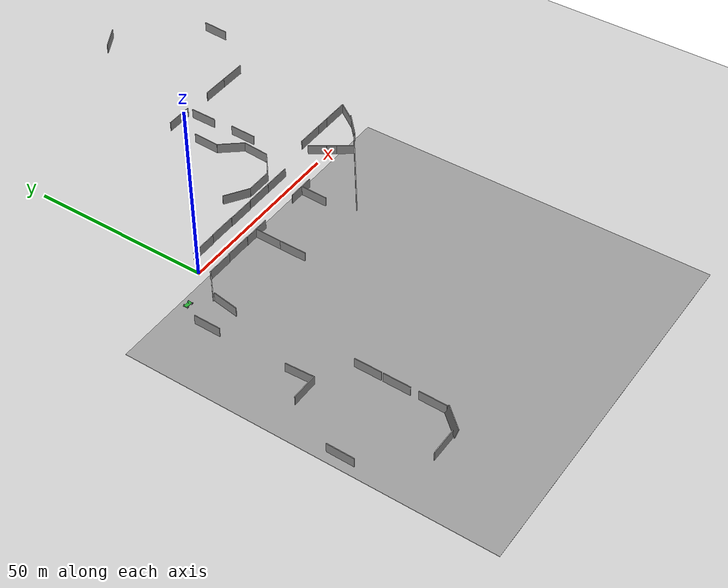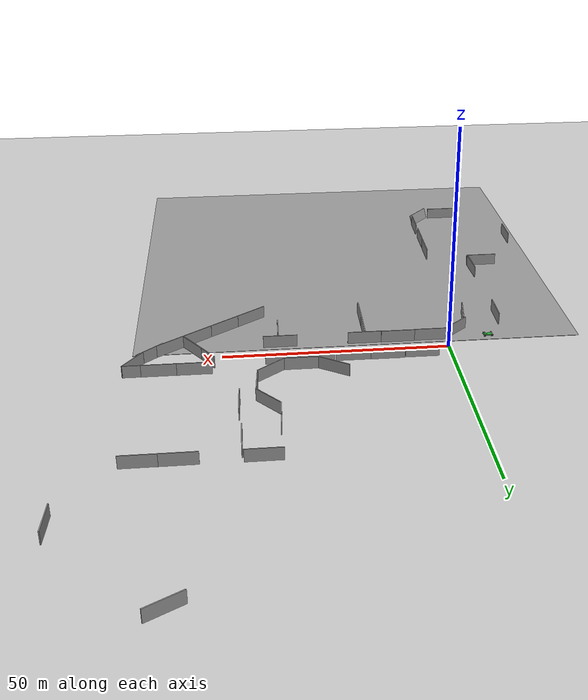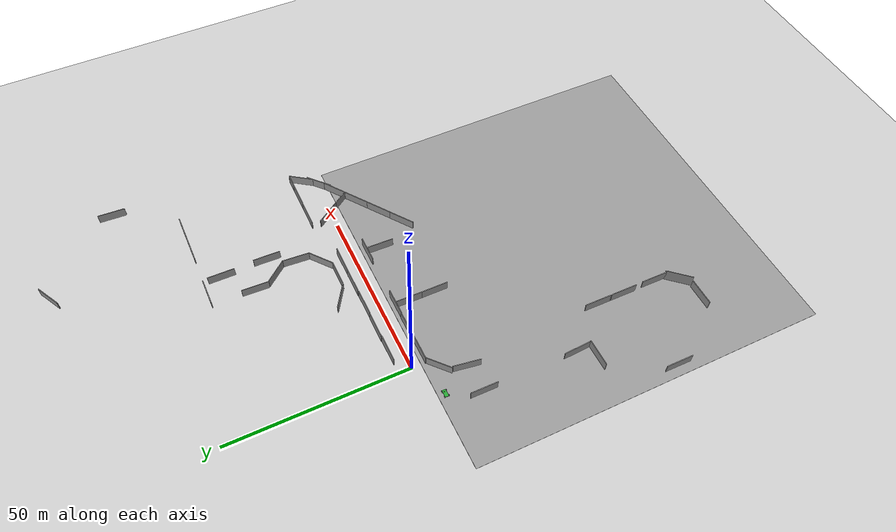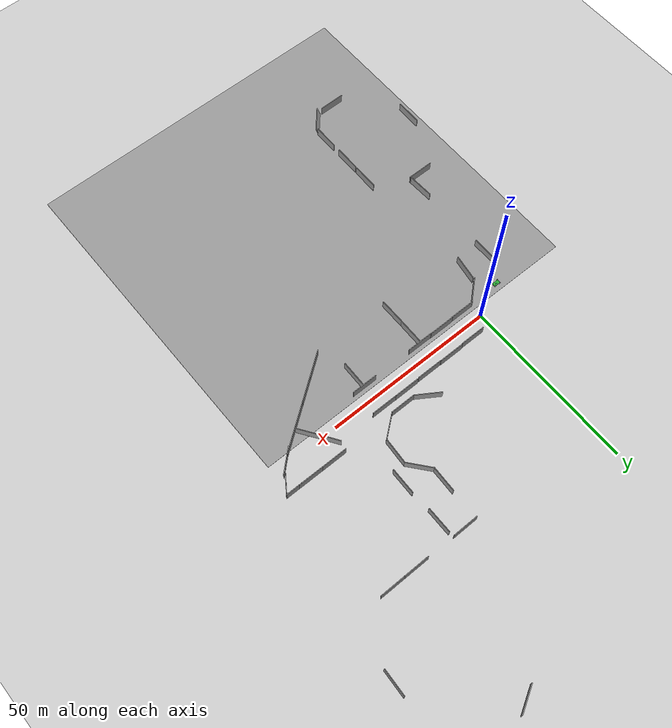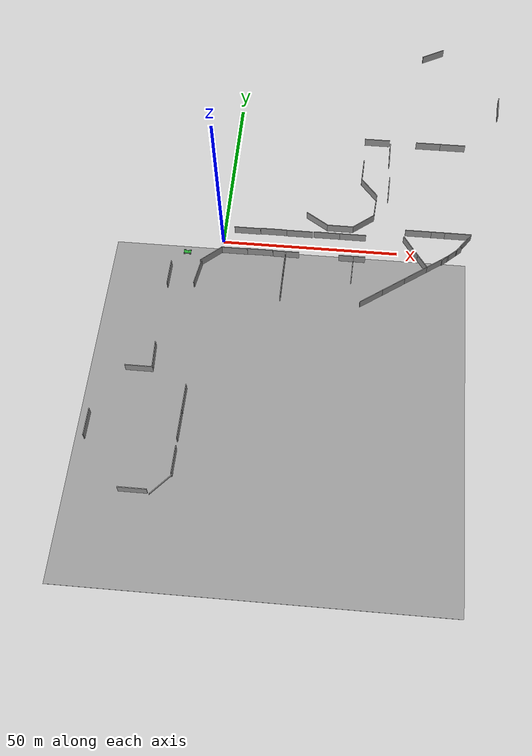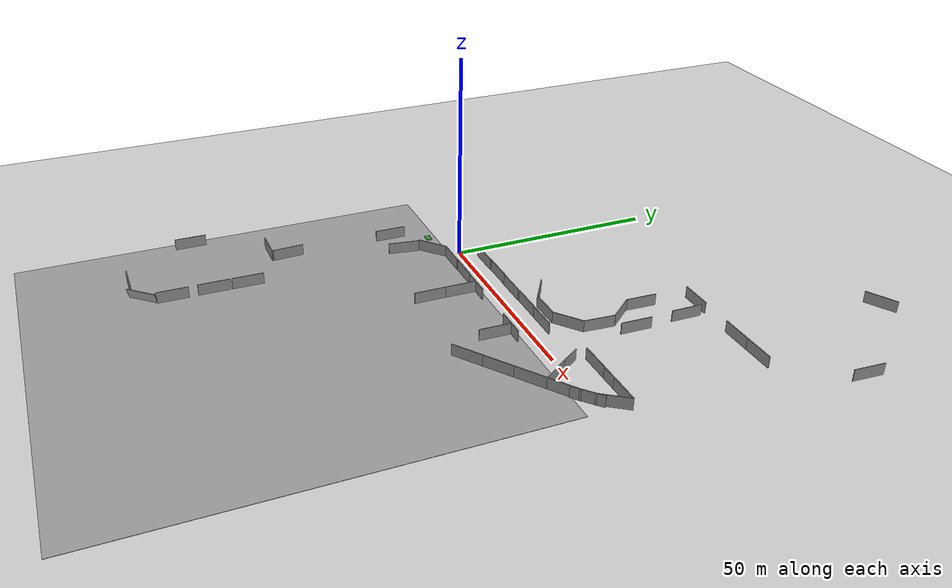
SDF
<sdf version="1.6">
 <world name="default">
  <scene>
   <grid>0</grid>
   <shadows>0</shadows>
   <ambient>0 0 0 1</ambient>
   <background>0.7 0.7 0.7 1</background>
  </scene>
  <light name="sun" type="directional">
   <pose>0 0 10 0 -0 0</pose>
   <diffuse>0.8 0.8 0.8 1</diffuse>
   <specular>0.2 0.2 0.2 1</specular>
   <attenuation>
    <range>1000</range>
    <constant>0.9</constant>
    <linear>0.01</linear>
    <quadratic>0.001</quadratic>
   </attenuation>
   <direction>-0.5 0.1 -0.9</direction>
  </light>
  <model name="ground">
   <link name="body">
    <collision name="geom">
     <geometry><plane><normal>0 0 1</normal><size>1 1</size></plane></geometry>
     <surface><friction><ode><mu>100</mu><mu2>50</mu2></ode></friction></surface>
    </collision>
   </link>
   <static>1</static>
  </model>
  <gravity>0 0 -9.8</gravity>
  <magnetic_field>6e-06 2.3e-05 -4.2e-05</magnetic_field>
  <atmosphere type="adiabatic"/>
  <physics name="default_physics" default="0" type="ode">
   <max_step_size>0.001</max_step_size>
   <real_time_factor>1</real_time_factor>
   <real_time_update_rate>1000</real_time_update_rate>
  </physics>
  <spherical_coordinates>
   <surface_model>EARTH_WGS84</surface_model>
   <latitude_deg>0</latitude_deg>
   <longitude_deg>0</longitude_deg>
   <elevation>0</elevation>
   <heading_deg>0</heading_deg>
  </spherical_coordinates>
  <model name="grey_wall">
   <static>1</static>
   <link name="link">
    <pose>0 0 1.4 0 -0 0</pose>
    <collision name="collision"><geometry><box><size>7.5 0.2 2.8</size></box></geometry></collision>
    <visual name="visual">
     <cast_shadows>0</cast_shadows>
     <geometry><box><size>7.5 0.2 2.8</size></box></geometry>
     <material>
      <script>
       <uri>model://grey_wall/materials/scripts</uri>
       <uri>model://grey_wall/materials/textures</uri>
       <name>vrc/grey_wall</name>
      </script>
     </material>
    </visual>
   </link>
   <pose>39.8349 8.85771 0 0 -0 0.675637</pose>
  </model>
  <model name="grey_wall_0">
   <static>1</static>
   <link name="link">
    <pose>0 0 1.4 0 -0 0</pose>
    <collision name="collision"><geometry><box><size>7.5 0.2 2.8</size></box></geometry></collision>
    <visual name="visual">
     <cast_shadows>0</cast_shadows>
     <geometry><box><size>7.5 0.2 2.8</size></box></geometry>
     <material>
      <script>
       <uri>model://grey_wall/materials/scripts</uri>
       <uri>model://grey_wall/materials/textures</uri>
       <name>vrc/grey_wall</name>
      </script>
     </material>
    </visual>
   </link>
   <pose>33.2301 6.52872 0 0 -0 0</pose>
  </model>
  <model name="grey_wall_1">
   <static>1</static>
   <link name="link">
    <pose>0 0 1.4 0 -0 0</pose>
    <collision name="collision"><geometry><box><size>7.5 0.2 2.8</size></box></geometry></collision>
    <visual name="visual">
     <cast_shadows>0</cast_shadows>
     <geometry><box><size>7.5 0.2 2.8</size></box></geometry>
     <material>
      <script>
       <uri>model://grey_wall/materials/scripts</uri>
       <uri>model://grey_wall/materials/textures</uri>
       <name>vrc/grey_wall</name>
      </script>
     </material>
    </visual>
   </link>
   <pose>42.9557 14.8753 0 0 0 -1.63944</pose>
  </model>
  <model name="grey_wall_2">
   <static>1</static>
   <link name="link">
    <pose>0 0 1.4 0 -0 0</pose>
    <collision name="collision"><geometry><box><size>7.5 0.2 2.8</size></box></geometry></collision>
    <visual name="visual">
     <cast_shadows>0</cast_shadows>
     <geometry><box><size>7.5 0.2 2.8</size></box></geometry>
     <material>
      <script>
       <uri>model://grey_wall/materials/scripts</uri>
       <uri>model://grey_wall/materials/textures</uri>
       <name>vrc/grey_wall</name>
      </script>
     </material>
    </visual>
   </link>
   <pose>18.4147 -3.73675 0 0 -0 0</pose>
  </model>
  <model name="grey_wall_3">
   <static>1</static>
   <link name="link">
    <pose>0 0 1.4 0 -0 0</pose>
    <collision name="collision"><geometry><box><size>7.5 0.2 2.8</size></box></geometry></collision>
    <visual name="visual">
     <cast_shadows>0</cast_shadows>
     <geometry><box><size>7.5 0.2 2.8</size></box></geometry>
     <material>
      <script>
       <uri>model://grey_wall/materials/scripts</uri>
       <uri>model://grey_wall/materials/textures</uri>
       <name>vrc/grey_wall</name>
      </script>
     </material>
    </visual>
   </link>
   <pose>37.216 -3.75414 0 0 -0 0</pose>
  </model>
  <model name="grey_wall_4">
   <static>1</static>
   <link name="link">
    <pose>0 0 1.4 0 -0 0</pose>
    <collision name="collision"><geometry><box><size>7.5 0.2 2.8</size></box></geometry></collision>
    <visual name="visual">
     <cast_shadows>0</cast_shadows>
     <geometry><box><size>7.5 0.2 2.8</size></box></geometry>
     <material>
      <script>
       <uri>model://grey_wall/materials/scripts</uri>
       <uri>model://grey_wall/materials/textures</uri>
       <name>vrc/grey_wall</name>
      </script>
     </material>
    </visual>
   </link>
   <pose>18.2308 -7.52074 0 0 0 -1.58731</pose>
  </model>
  <model name="grey_wall_5">
   <static>1</static>
   <link name="link">
    <pose>0 0 1.4 0 -0 0</pose>
    <collision name="collision"><geometry><box><size>7.5 0.2 2.8</size></box></geometry></collision>
    <visual name="visual">
     <cast_shadows>0</cast_shadows>
     <geometry><box><size>7.5 0.2 2.8</size></box></geometry>
     <material>
      <script>
       <uri>model://grey_wall/materials/scripts</uri>
       <uri>model://grey_wall/materials/textures</uri>
       <name>vrc/grey_wall</name>
      </script>
     </material>
    </visual>
   </link>
   <pose>18.1488 -14.9714 0 0 0 -1.57526</pose>
  </model>
  <model name="grey_wall_6">
   <static>1</static>
   <link name="link">
    <pose>0 0 1.4 0 -0 0</pose>
    <collision name="collision"><geometry><box><size>7.5 0.2 2.8</size></box></geometry></collision>
    <visual name="visual">
     <cast_shadows>0</cast_shadows>
     <geometry><box><size>7.5 0.2 2.8</size></box></geometry>
     <material>
      <script>
       <uri>model://grey_wall/materials/scripts</uri>
       <uri>model://grey_wall/materials/textures</uri>
       <name>vrc/grey_wall</name>
      </script>
     </material>
    </visual>
   </link>
   <pose>14.1798 3.77714 0 0 -0 0</pose>
  </model>
  <model name="grey_wall_7">
   <static>1</static>
   <link name="link">
    <pose>0 0 1.4 0 -0 0</pose>
    <collision name="collision"><geometry><box><size>7.5 0.2 2.8</size></box></geometry></collision>
    <visual name="visual">
     <cast_shadows>0</cast_shadows>
     <geometry><box><size>7.5 0.2 2.8</size></box></geometry>
     <material>
      <script>
       <uri>model://grey_wall/materials/scripts</uri>
       <uri>model://grey_wall/materials/textures</uri>
       <name>vrc/grey_wall</name>
      </script>
     </material>
    </visual>
   </link>
   <pose>21.7323 3.7046 0 0 -0 0</pose>
  </model>
  <model name="grey_wall_8">
   <static>1</static>
   <link name="link">
    <pose>0 0 1.4 0 -0 0</pose>
    <collision name="collision"><geometry><box><size>7.5 0.2 2.8</size></box></geometry></collision>
    <visual name="visual">
     <cast_shadows>0</cast_shadows>
     <geometry><box><size>7.5 0.2 2.8</size></box></geometry>
     <material>
      <script>
       <uri>model://grey_wall/materials/scripts</uri>
       <uri>model://grey_wall/materials/textures</uri>
       <name>vrc/grey_wall</name>
      </script>
     </material>
    </visual>
   </link>
   <pose>29.5412 3.80192 0 0 -0 0</pose>
  </model>
  <model name="grey_wall_9">
   <static>1</static>
   <link name="link">
    <pose>0 0 1.4 0 -0 0</pose>
    <collision name="collision"><geometry><box><size>7.5 0.2 2.8</size></box></geometry></collision>
    <visual name="visual">
     <cast_shadows>0</cast_shadows>
     <geometry><box><size>7.5 0.2 2.8</size></box></geometry>
     <material>
      <script>
       <uri>model://grey_wall/materials/scripts</uri>
       <uri>model://grey_wall/materials/textures</uri>
       <name>vrc/grey_wall</name>
      </script>
     </material>
    </visual>
   </link>
   <pose>37.0644 3.78366 0 0 -0 0</pose>
  </model>
  <model name="grey_wall_10">
   <static>1</static>
   <link name="link">
    <pose>0 0 1.4 0 -0 0</pose>
    <collision name="collision"><geometry><box><size>7.5 0.2 2.8</size></box></geometry></collision>
    <visual name="visual">
     <cast_shadows>0</cast_shadows>
     <geometry><box><size>7.5 0.2 2.8</size></box></geometry>
     <material>
      <script>
       <uri>model://grey_wall/materials/scripts</uri>
       <uri>model://grey_wall/materials/textures</uri>
       <name>vrc/grey_wall</name>
      </script>
     </material>
    </visual>
   </link>
   <pose>37.5201 -7.61042 0 0 0 -1.59517</pose>
  </model>
  <model name="grey_wall_11">
   <static>1</static>
   <link name="link">
    <pose>0 0 1.4 0 -0 0</pose>
    <collision name="collision"><geometry><box><size>7.5 0.2 2.8</size></box></geometry></collision>
    <visual name="visual">
     <cast_shadows>0</cast_shadows>
     <geometry><box><size>7.5 0.2 2.8</size></box></geometry>
     <material>
      <script>
       <uri>model://grey_wall/materials/scripts</uri>
       <uri>model://grey_wall/materials/textures</uri>
       <name>vrc/grey_wall</name>
      </script>
     </material>
    </visual>
   </link>
   <pose>46.6897 21.9332 0 0 -0 1.54578</pose>
  </model>
  <model name="grey_wall_12">
   <static>1</static>
   <link name="link">
    <pose>0 0 1.4 0 -0 0</pose>
    <collision name="collision"><geometry><box><size>7.5 0.2 2.8</size></box></geometry></collision>
    <visual name="visual">
     <cast_shadows>0</cast_shadows>
     <geometry><box><size>7.5 0.2 2.8</size></box></geometry>
     <material>
      <script>
       <uri>model://grey_wall/materials/scripts</uri>
       <uri>model://grey_wall/materials/textures</uri>
       <name>vrc/grey_wall</name>
      </script>
     </material>
    </visual>
   </link>
   <pose>6.59211 3.65025 0 0 -0 0</pose>
  </model>
  <model name="grey_wall_13">
   <static>1</static>
   <link name="link">
    <pose>0 0 1.4 0 -0 0</pose>
    <collision name="collision"><geometry><box><size>7.5 0.2 2.8</size></box></geometry></collision>
    <visual name="visual">
     <cast_shadows>0</cast_shadows>
     <geometry><box><size>7.5 0.2 2.8</size></box></geometry>
     <material>
      <script>
       <uri>model://grey_wall/materials/scripts</uri>
       <uri>model://grey_wall/materials/textures</uri>
       <name>vrc/grey_wall</name>
      </script>
     </material>
    </visual>
   </link>
   <pose>-2.7026 -6.1985 0 0 -0 0.728217</pose>
  </model>
  <model name="grey_wall_14">
   <static>1</static>
   <link name="link">
    <pose>0 0 1.4 0 -0 0</pose>
    <collision name="collision"><geometry><box><size>7.5 0.2 2.8</size></box></geometry></collision>
    <visual name="visual">
     <cast_shadows>0</cast_shadows>
     <geometry><box><size>7.5 0.2 2.8</size></box></geometry>
     <material>
      <script>
       <uri>model://grey_wall/materials/scripts</uri>
       <uri>model://grey_wall/materials/textures</uri>
       <name>vrc/grey_wall</name>
      </script>
     </material>
    </visual>
   </link>
   <pose>43.3452 -16.6324 0 0 -0 0.625661</pose>
  </model>
  <model name="grey_wall_14_clone">
   <static>1</static>
   <link name="link">
    <pose>0 0 1.4 0 -0 0</pose>
    <collision name="collision"><geometry><box><size>7.5 0.2 2.8</size></box></geometry></collision>
    <visual name="visual">
     <cast_shadows>0</cast_shadows>
     <geometry><box><size>7.5 0.2 2.8</size></box></geometry>
     <material>
      <script>
       <uri>model://grey_wall/materials/scripts</uri>
       <uri>model://grey_wall/materials/textures</uri>
       <name>vrc/grey_wall</name>
      </script>
     </material>
    </visual>
   </link>
   <pose>49.4103 -12.2666 0 0 -0 0.625661</pose>
  </model>
  <model name="grey_wall_14_clone_0">
   <static>1</static>
   <link name="link">
    <pose>0 0 1.4 0 -0 0</pose>
    <collision name="collision"><geometry><box><size>7.5 0.2 2.8</size></box></geometry></collision>
    <visual name="visual">
     <cast_shadows>0</cast_shadows>
     <geometry><box><size>7.5 0.2 2.8</size></box></geometry>
     <material>
      <script>
       <uri>model://grey_wall/materials/scripts</uri>
       <uri>model://grey_wall/materials/textures</uri>
       <name>vrc/grey_wall</name>
      </script>
     </material>
    </visual>
   </link>
   <pose>55.413 -7.93584 0 0 -0 0.625661</pose>
  </model>
  <model name="grey_wall_14_clone_1">
   <static>1</static>
   <link name="link">
    <pose>0 0 1.4 0 -0 0</pose>
    <collision name="collision"><geometry><box><size>7.5 0.2 2.8</size></box></geometry></collision>
    <visual name="visual">
     <cast_shadows>0</cast_shadows>
     <geometry><box><size>7.5 0.2 2.8</size></box></geometry>
     <material>
      <script>
       <uri>model://grey_wall/materials/scripts</uri>
       <uri>model://grey_wall/materials/textures</uri>
       <name>vrc/grey_wall</name>
      </script>
     </material>
    </visual>
   </link>
   <pose>56.4284 -2.68775 0 0 0 -0.964793</pose>
  </model>
  <model name="grey_wall_14_clone_2">
   <static>1</static>
   <link name="link">
    <pose>0 0 1.4 0 -0 0</pose>
    <collision name="collision"><geometry><box><size>7.5 0.2 2.8</size></box></geometry></collision>
    <visual name="visual">
     <cast_shadows>0</cast_shadows>
     <geometry><box><size>7.5 0.2 2.8</size></box></geometry>
     <material>
      <script>
       <uri>model://grey_wall/materials/scripts</uri>
       <uri>model://grey_wall/materials/textures</uri>
       <name>vrc/grey_wall</name>
      </script>
     </material>
    </visual>
   </link>
   <pose>53.7346 1.23619 0 0 0 -0.981934</pose>
  </model>
  <model name="grey_wall_15">
   <static>1</static>
   <link name="link">
    <pose>0 0 1.4 0 -0 0</pose>
    <collision name="collision"><geometry><box><size>7.5 0.2 2.8</size></box></geometry></collision>
    <visual name="visual">
     <cast_shadows>0</cast_shadows>
     <geometry><box><size>7.5 0.2 2.8</size></box></geometry>
     <material>
      <script>
       <uri>model://grey_wall/materials/scripts</uri>
       <uri>model://grey_wall/materials/textures</uri>
       <name>vrc/grey_wall</name>
      </script>
     </material>
    </visual>
   </link>
   <pose>26.4389 8.5589 -0.00177 0 0 -0.57326</pose>
  </model>
  <model name="grey_wall_16">
   <static>1</static>
   <link name="link">
    <pose>0 0 1.4 0 -0 0</pose>
    <collision name="collision"><geometry><box><size>7.5 0.2 2.8</size></box></geometry></collision>
    <visual name="visual">
     <cast_shadows>0</cast_shadows>
     <geometry><box><size>7.5 0.2 2.8</size></box></geometry>
     <material>
      <script>
       <uri>model://grey_wall/materials/scripts</uri>
       <uri>model://grey_wall/materials/textures</uri>
       <name>vrc/grey_wall</name>
      </script>
     </material>
    </visual>
   </link>
   <pose>40.859 21.4125 0 0 0 -0.877564</pose>
  </model>
  <model name="grey_wall_17">
   <static>1</static>
   <link name="link">
    <pose>0 0 1.4 0 -0 0</pose>
    <collision name="collision"><geometry><box><size>7.5 0.2 2.8</size></box></geometry></collision>
    <visual name="visual">
     <cast_shadows>0</cast_shadows>
     <geometry><box><size>7.5 0.2 2.8</size></box></geometry>
     <material>
      <script>
       <uri>model://grey_wall/materials/scripts</uri>
       <uri>model://grey_wall/materials/textures</uri>
       <name>vrc/grey_wall</name>
      </script>
     </material>
    </visual>
   </link>
   <pose>55.8354 6.65393 0 0 -0 0</pose>
  </model>
  <model name="grey_wall_17_clone">
   <static>1</static>
   <link name="link">
    <pose>0 0 1.4 0 -0 0</pose>
    <collision name="collision"><geometry><box><size>7.5 0.2 2.8</size></box></geometry></collision>
    <visual name="visual">
     <cast_shadows>0</cast_shadows>
     <geometry><box><size>7.5 0.2 2.8</size></box></geometry>
     <material>
      <script>
       <uri>model://grey_wall/materials/scripts</uri>
       <uri>model://grey_wall/materials/textures</uri>
       <name>vrc/grey_wall</name>
      </script>
     </material>
    </visual>
   </link>
   <pose>63.3117 6.63288 0 0 -0 0</pose>
  </model>
  <model name="grey_wall_17_clone_0">
   <static>1</static>
   <link name="link">
    <pose>0 0 1.4 0 -0 0</pose>
    <collision name="collision"><geometry><box><size>7.5 0.2 2.8</size></box></geometry></collision>
    <visual name="visual">
     <cast_shadows>0</cast_shadows>
     <geometry><box><size>7.5 0.2 2.8</size></box></geometry>
     <material>
      <script>
       <uri>model://grey_wall/materials/scripts</uri>
       <uri>model://grey_wall/materials/textures</uri>
       <name>vrc/grey_wall</name>
      </script>
     </material>
    </visual>
   </link>
   <pose>67.1746 6.61297 0 0 -0 0</pose>
  </model>
  <model name="grey_wall_14_clone_0_clone">
   <static>1</static>
   <link name="link">
    <pose>0 0 1.4 0 -0 0</pose>
    <collision name="collision"><geometry><box><size>7.5 0.2 2.8</size></box></geometry></collision>
    <visual name="visual">
     <cast_shadows>0</cast_shadows>
     <geometry><box><size>7.5 0.2 2.8</size></box></geometry>
     <material>
      <script>
       <uri>model://grey_wall/materials/scripts</uri>
       <uri>model://grey_wall/materials/textures</uri>
       <name>vrc/grey_wall</name>
      </script>
     </material>
    </visual>
   </link>
   <pose>61.4999 -3.53842 0 0 -0 0.625661</pose>
  </model>
  <model name="grey_wall_14_clone_0_clone_0">
   <static>1</static>
   <link name="link">
    <pose>0 0 1.4 0 -0 0</pose>
    <collision name="collision"><geometry><box><size>7.5 0.2 2.8</size></box></geometry></collision>
    <visual name="visual">
     <cast_shadows>0</cast_shadows>
     <geometry><box><size>7.5 0.2 2.8</size></box></geometry>
     <material>
      <script>
       <uri>model://grey_wall/materials/scripts</uri>
       <uri>model://grey_wall/materials/textures</uri>
       <name>vrc/grey_wall</name>
      </script>
     </material>
    </visual>
   </link>
   <pose>68.8129 3.60668 0 0 -0 0.957713</pose>
  </model>
  <model name="grey_wall_18">
   <static>1</static>
   <link name="link">
    <pose>0 0 1.4 0 -0 0</pose>
    <collision name="collision"><geometry><box><size>7.5 0.2 2.8</size></box></geometry></collision>
    <visual name="visual">
     <cast_shadows>0</cast_shadows>
     <geometry><box><size>7.5 0.2 2.8</size></box></geometry>
     <material>
      <script>
       <uri>model://grey_wall/materials/scripts</uri>
       <uri>model://grey_wall/materials/textures</uri>
       <name>vrc/grey_wall</name>
      </script>
     </material>
    </visual>
   </link>
   <pose>65.4696 -0.4305 0 0 -0 0.737986</pose>
  </model>
  <model name="grey_wall_17_clone_0_clone_1">
   <static>1</static>
   <link name="link">
    <pose>0 0 1.4 0 -0 0</pose>
    <collision name="collision"><geometry><box><size>7.5 0.2 2.8</size></box></geometry></collision>
    <visual name="visual">
     <cast_shadows>0</cast_shadows>
     <geometry><box><size>7.5 0.2 2.8</size></box></geometry>
     <material>
      <script>
       <uri>model://grey_wall/materials/scripts</uri>
       <uri>model://grey_wall/materials/textures</uri>
       <name>vrc/grey_wall</name>
      </script>
     </material>
    </visual>
   </link>
   <pose>58.0163 39.8342 0 0 -0 0</pose>
  </model>
  <model name="grey_wall_17_clone_0_clone_2">
   <static>1</static>
   <link name="link">
    <pose>0 0 1.4 0 -0 0</pose>
    <collision name="collision"><geometry><box><size>7.5 0.2 2.8</size></box></geometry></collision>
    <visual name="visual">
     <cast_shadows>0</cast_shadows>
     <geometry><box><size>7.5 0.2 2.8</size></box></geometry>
     <material>
      <script>
       <uri>model://grey_wall/materials/scripts</uri>
       <uri>model://grey_wall/materials/textures</uri>
       <name>vrc/grey_wall</name>
      </script>
     </material>
    </visual>
   </link>
   <pose>65.387 39.832 0 0 -0 0</pose>
  </model>
  <model name="grey_wall_17_clone_0_clone_3">
   <static>1</static>
   <link name="link">
    <pose>0 0 1.4 0 -0 0</pose>
    <collision name="collision"><geometry><box><size>7.5 0.2 2.8</size></box></geometry></collision>
    <visual name="visual">
     <cast_shadows>0</cast_shadows>
     <geometry><box><size>7.5 0.2 2.8</size></box></geometry>
     <material>
      <script>
       <uri>model://grey_wall/materials/scripts</uri>
       <uri>model://grey_wall/materials/textures</uri>
       <name>vrc/grey_wall</name>
      </script>
     </material>
    </visual>
   </link>
   <pose>38.6327 27.8904 0 0 -0 1.52821</pose>
  </model>
  <model name="grey_wall_17_clone_0_clone_4">
   <static>1</static>
   <link name="link">
    <pose>0 0 1.4 0 -0 0</pose>
    <collision name="collision"><geometry><box><size>7.5 0.2 2.8</size></box></geometry></collision>
    <visual name="visual">
     <cast_shadows>0</cast_shadows>
     <geometry><box><size>7.5 0.2 2.8</size></box></geometry>
     <material>
      <script>
       <uri>model://grey_wall/materials/scripts</uri>
       <uri>model://grey_wall/materials/textures</uri>
       <name>vrc/grey_wall</name>
      </script>
     </material>
    </visual>
   </link>
   <pose>58.7712 78.1759 0 0 -0 0.506868</pose>
  </model>
  <model name="grey_wall_17_clone_0_clone_4_clone">
   <static>1</static>
   <link name="link">
    <pose>0 0 1.4 0 -0 0</pose>
    <collision name="collision"><geometry><box><size>7.5 0.2 2.8</size></box></geometry></collision>
    <visual name="visual">
     <cast_shadows>0</cast_shadows>
     <geometry><box><size>7.5 0.2 2.8</size></box></geometry>
     <material>
      <script>
       <uri>model://grey_wall/materials/scripts</uri>
       <uri>model://grey_wall/materials/textures</uri>
       <name>vrc/grey_wall</name>
      </script>
     </material>
    </visual>
   </link>
   <pose>79.483 56.5156 0 0 -0 1.51486</pose>
  </model>
  <model name="grey_wall_21">
   <static>1</static>
   <link name="link">
    <pose>0 0 1.4 0 -0 0</pose>
    <collision name="collision"><geometry><box><size>7.5 0.2 2.8</size></box></geometry></collision>
    <visual name="visual">
     <cast_shadows>0</cast_shadows>
     <geometry><box><size>7.5 0.2 2.8</size></box></geometry>
     <material>
      <script>
       <uri>model://grey_wall/materials/scripts</uri>
       <uri>model://grey_wall/materials/textures</uri>
       <name>vrc/grey_wall</name>
      </script>
     </material>
    </visual>
   </link>
   <pose>46.4144 34.882 0 0 0 -1.58133</pose>
  </model>
  <model name="grey_wall_21_clone">
   <static>1</static>
   <link name="link">
    <pose>0 0 1.4 0 -0 0</pose>
    <collision name="collision"><geometry><box><size>7.5 0.2 2.8</size></box></geometry></collision>
    <visual name="visual">
     <cast_shadows>0</cast_shadows>
     <geometry><box><size>7.5 0.2 2.8</size></box></geometry>
     <material>
      <script>
       <uri>model://grey_wall/materials/scripts</uri>
       <uri>model://grey_wall/materials/textures</uri>
       <name>vrc/grey_wall</name>
      </script>
     </material>
    </visual>
   </link>
   <pose>-13.6521 -13.3395 0 0 0 -1.58133</pose>
  </model>
  <model name="grey_wall_21_clone_clone">
   <static>1</static>
   <link name="link">
    <pose>0 0 1.4 0 -0 0</pose>
    <collision name="collision"><geometry><box><size>7.5 0.2 2.8</size></box></geometry></collision>
    <visual name="visual">
     <cast_shadows>0</cast_shadows>
     <geometry><box><size>7.5 0.2 2.8</size></box></geometry>
     <material>
      <script>
       <uri>model://grey_wall/materials/scripts</uri>
       <uri>model://grey_wall/materials/textures</uri>
       <name>vrc/grey_wall</name>
      </script>
     </material>
    </visual>
   </link>
   <pose>-3.89819 -69.4181 0 0 0 -1.58133</pose>
  </model>
  <model name="grey_wall_21_clone_clone_clone">
   <static>1</static>
   <link name="link">
    <pose>0 0 1.4 0 -0 0</pose>
    <collision name="collision"><geometry><box><size>7.5 0.2 2.8</size></box></geometry></collision>
    <visual name="visual">
     <cast_shadows>0</cast_shadows>
     <geometry><box><size>7.5 0.2 2.8</size></box></geometry>
     <material>
      <script>
       <uri>model://grey_wall/materials/scripts</uri>
       <uri>model://grey_wall/materials/textures</uri>
       <name>vrc/grey_wall</name>
      </script>
     </material>
    </visual>
   </link>
   <pose>-27.8861 -60.9473 0 0 0 -1.58133</pose>
  </model>
  <model name="grey_wall_21_clone_clone_clone_clone">
   <static>1</static>
   <link name="link">
    <pose>0 0 1.4 0 -0 0</pose>
    <collision name="collision"><geometry><box><size>7.5 0.2 2.8</size></box></geometry></collision>
    <visual name="visual">
     <cast_shadows>0</cast_shadows>
     <geometry><box><size>7.5 0.2 2.8</size></box></geometry>
     <material>
      <script>
       <uri>model://grey_wall/materials/scripts</uri>
       <uri>model://grey_wall/materials/textures</uri>
       <name>vrc/grey_wall</name>
      </script>
     </material>
    </visual>
   </link>
   <pose>-3.89596 -59.8316 0 0 0 -1.58133</pose>
  </model>
  <model name="grey_wall_6_clone">
   <static>1</static>
   <link name="link">
    <pose>0 0 1.4 0 -0 0</pose>
    <collision name="collision"><geometry><box><size>7.5 0.2 2.8</size></box></geometry></collision>
    <visual name="visual">
     <cast_shadows>0</cast_shadows>
     <geometry><box><size>7.5 0.2 2.8</size></box></geometry>
     <material>
      <script>
       <uri>model://grey_wall/materials/scripts</uri>
       <uri>model://grey_wall/materials/textures</uri>
       <name>vrc/grey_wall</name>
      </script>
     </material>
    </visual>
   </link>
   <pose>-13.0393 -77.927 0 0 -0 0</pose>
  </model>
  <model name="grey_wall_6_clone_clone">
   <static>1</static>
   <link name="link">
    <pose>0 0 1.4 0 -0 0</pose>
    <collision name="collision"><geometry><box><size>7.5 0.2 2.8</size></box></geometry></collision>
    <visual name="visual">
     <cast_shadows>0</cast_shadows>
     <geometry><box><size>7.5 0.2 2.8</size></box></geometry>
     <material>
      <script>
       <uri>model://grey_wall/materials/scripts</uri>
       <uri>model://grey_wall/materials/textures</uri>
       <name>vrc/grey_wall</name>
      </script>
     </material>
    </visual>
   </link>
   <pose>-6.51509 -75.5375 0 0.311511 -1e-06 0.844278</pose>
  </model>
  <model name="grey_wall_6_clone_clone_clone">
   <static>1</static>
   <link name="link">
    <pose>0 0 1.4 0 -0 0</pose>
    <collision name="collision"><geometry><box><size>7.5 0.2 2.8</size></box></geometry></collision>
    <visual name="visual">
     <cast_shadows>0</cast_shadows>
     <geometry><box><size>7.5 0.2 2.8</size></box></geometry>
     <material>
      <script>
       <uri>model://grey_wall/materials/scripts</uri>
       <uri>model://grey_wall/materials/textures</uri>
       <name>vrc/grey_wall</name>
      </script>
     </material>
    </visual>
   </link>
   <pose>-17.1273 -43.7668 0 0 -0 0</pose>
  </model>
  <model name="grey_wall_21_clone_clone_clone_clone_clone">
   <static>1</static>
   <link name="link">
    <pose>0 0 1.4 0 -0 0</pose>
    <collision name="collision"><geometry><box><size>7.5 0.2 2.8</size></box></geometry></collision>
    <visual name="visual">
     <cast_shadows>0</cast_shadows>
     <geometry><box><size>7.5 0.2 2.8</size></box></geometry>
     <material>
      <script>
       <uri>model://grey_wall/materials/scripts</uri>
       <uri>model://grey_wall/materials/textures</uri>
       <name>vrc/grey_wall</name>
      </script>
     </material>
    </visual>
   </link>
   <pose>-3.81161 -51.9677 0 0 0 -1.58133</pose>
  </model>
  <model name="grey_wall_22">
   <static>1</static>
   <link name="link">
    <pose>0 0 1.4 0 -0 0</pose>
    <collision name="collision"><geometry><box><size>7.5 0.2 2.8</size></box></geometry></collision>
    <visual name="visual">
     <cast_shadows>0</cast_shadows>
     <geometry><box><size>7.5 0.2 2.8</size></box></geometry>
     <material>
      <script>
       <uri>model://grey_wall/materials/scripts</uri>
       <uri>model://grey_wall/materials/textures</uri>
       <name>vrc/grey_wall</name>
      </script>
     </material>
    </visual>
   </link>
   <pose>42.423 39.9659 0 0 -0 0</pose>
  </model>
  <model name="grey_wall_23">
   <static>1</static>
   <link name="link">
    <pose>0 0 1.4 0 -0 0</pose>
    <collision name="collision"><geometry><box><size>7.5 0.2 2.8</size></box></geometry></collision>
    <visual name="visual">
     <cast_shadows>0</cast_shadows>
     <geometry><box><size>7.5 0.2 2.8</size></box></geometry>
     <material>
      <script>
       <uri>model://grey_wall/materials/scripts</uri>
       <uri>model://grey_wall/materials/textures</uri>
       <name>vrc/grey_wall</name>
      </script>
     </material>
    </visual>
   </link>
   <pose>10.8828 -3.6473 0 0 -0 0</pose>
  </model>
  <model name="grey_wall_24">
   <static>1</static>
   <link name="link">
    <pose>0 0 1.4 0 -0 0</pose>
    <collision name="collision"><geometry><box><size>7.5 0.2 2.8</size></box></geometry></collision>
    <visual name="visual">
     <cast_shadows>0</cast_shadows>
     <geometry><box><size>7.5 0.2 2.8</size></box></geometry>
     <material>
      <script>
       <uri>model://grey_wall/materials/scripts</uri>
       <uri>model://grey_wall/materials/textures</uri>
       <name>vrc/grey_wall</name>
      </script>
     </material>
    </visual>
   </link>
   <pose>3.61375 -3.74182 0 0 -0 0</pose>
  </model>
  <model name="grey_wall_25">
   <static>1</static>
   <link name="link">
    <pose>0 0 1.4 0 -0 0</pose>
    <collision name="collision"><geometry><box><size>7.5 0.2 2.8</size></box></geometry></collision>
    <visual name="visual">
     <cast_shadows>0</cast_shadows>
     <geometry><box><size>7.5 0.2 2.8</size></box></geometry>
     <material>
      <script>
       <uri>model://grey_wall/materials/scripts</uri>
       <uri>model://grey_wall/materials/textures</uri>
       <name>vrc/grey_wall</name>
      </script>
     </material>
    </visual>
   </link>
   <pose>-5.71212 -12.5574 0 0 -0 1.41283</pose>
  </model>
  <model name="grey_wall_26">
   <static>1</static>
   <link name="link">
    <pose>0 0 1.4 0 -0 0</pose>
    <collision name="collision"><geometry><box><size>7.5 0.2 2.8</size></box></geometry></collision>
    <visual name="visual">
     <cast_shadows>0</cast_shadows>
     <geometry><box><size>7.5 0.2 2.8</size></box></geometry>
     <material>
      <script>
       <uri>model://grey_wall/materials/scripts</uri>
       <uri>model://grey_wall/materials/textures</uri>
       <name>vrc/grey_wall</name>
      </script>
     </material>
    </visual>
   </link>
   <pose>-13.7275 -39.7398 0 0 0 -1.52693</pose>
  </model>
  <model name="ground_plane">
   <static>1</static>
   <link name="link">
    <collision name="collision">
     <geometry><plane><normal>0 0 1</normal><size>100 100</size></plane></geometry>
     <surface><friction><ode><mu>100</mu><mu2>50</mu2></ode></friction></surface>
    </collision>
    <visual name="visual">
     <cast_shadows>0</cast_shadows>
     <geometry><plane><normal>0 0 1</normal><size>100 100</size></plane></geometry>
     <material>
      <script><uri>file://media/materials/scripts/gazebo.material</uri><name>Gazebo/Grey</name></script>
     </material>
    </visual>
   </link>
   <pose>35.2074 45.2398 0 0 -0 0</pose>
  </model>
  <model name="ground_plane">
   <static>1</static>
   <link name="link">
    <collision name="collision">
     <geometry><plane><normal>0 0 1</normal><size>100 100</size></plane></geometry>
     <surface><friction><ode><mu>100</mu><mu2>50</mu2></ode></friction></surface>
    </collision>
    <visual name="visual">
     <cast_shadows>0</cast_shadows>
     <geometry><plane><normal>0 0 1</normal><size>100 100</size></plane></geometry>
     <material>
      <script><uri>file://media/materials/scripts/gazebo.material</uri><name>Gazebo/Grey</name></script>
     </material>
    </visual>
   </link>
   <pose>35.2074 45.2398 0 0 -0 0</pose>
  </model>
  <model name="car">
   <link name="chassis">
    <pose>0 0 0.3 0 -0 0</pose>
    <collision name="collision"><geometry><box><size>2 1 0.2</size></box></geometry></collision>
    <visual name="visual">
     <geometry><box><size>2 1 0.2</size></box></geometry>
     <material>
      <script><uri>file://media/materials/scripts/gazebo.material</uri><name>Gazebo/Green</name></script>
     </material>
    </visual>
    <inertial>
     <inertia><ixx>1</ixx><ixy>0</ixy><ixz>0</ixz><iyy>1</iyy><iyz>0</iyz><izz>1</izz></inertia>
     <mass>1</mass>
    </inertial>
   </link>
   <link name="front_left_wheel">
    <pose>0.8 0.6 0.3 -0 1.5707 1.5707</pose>
    <collision name="collision">
     <geometry><cylinder><radius>0.3</radius><length>0.1</length></cylinder></geometry>
    </collision>
    <visual name="visual">
     <geometry><cylinder><radius>0.3</radius><length>0.1</length></cylinder></geometry>
     <material>
      <script><uri>file://media/materials/scripts/gazebo.material</uri><name>Gazebo/Black</name></script>
     </material>
    </visual>
    <inertial>
     <inertia><ixx>1</ixx><ixy>0</ixy><ixz>0</ixz><iyy>1</iyy><iyz>0</iyz><izz>1</izz></inertia>
     <mass>1</mass>
    </inertial>
   </link>
   <link name="front_right_wheel">
    <pose>0.8 -0.6 0.3 -0 1.5707 1.5707</pose>
    <collision name="collision">
     <geometry><cylinder><radius>0.3</radius><length>0.1</length></cylinder></geometry>
    </collision>
    <visual name="visual">
     <geometry><cylinder><radius>0.3</radius><length>0.1</length></cylinder></geometry>
     <material>
      <script><uri>file://media/materials/scripts/gazebo.material</uri><name>Gazebo/Black</name></script>
     </material>
    </visual>
    <inertial>
     <inertia><ixx>1</ixx><ixy>0</ixy><ixz>0</ixz><iyy>1</iyy><iyz>0</iyz><izz>1</izz></inertia>
     <mass>1</mass>
    </inertial>
   </link>
   <link name="back_right_wheel">
    <pose>-0.8 -0.6 0.3 -0 1.5707 1.5707</pose>
    <collision name="collision">
     <geometry><cylinder><radius>0.3</radius><length>0.1</length></cylinder></geometry>
    </collision>
    <visual name="visual">
     <geometry><cylinder><radius>0.3</radius><length>0.1</length></cylinder></geometry>
     <material>
      <script><uri>file://media/materials/scripts/gazebo.material</uri><name>Gazebo/Black</name></script>
     </material>
    </visual>
    <inertial>
     <inertia><ixx>1</ixx><ixy>0</ixy><ixz>0</ixz><iyy>1</iyy><iyz>0</iyz><izz>1</izz></inertia>
     <mass>1</mass>
    </inertial>
   </link>
   <link name="back_left_wheel">
    <pose>-0.8 0.6 0.3 -0 1.5707 1.5707</pose>
    <collision name="collision">
     <geometry><cylinder><radius>0.3</radius><length>0.1</length></cylinder></geometry>
    </collision>
    <visual name="visual">
     <geometry><cylinder><radius>0.3</radius><length>0.1</length></cylinder></geometry>
     <material>
      <script><uri>file://media/materials/scripts/gazebo.material</uri><name>Gazebo/Black</name></script>
     </material>
    </visual>
    <inertial>
     <inertia><ixx>1</ixx><ixy>0</ixy><ixz>0</ixz><iyy>1</iyy><iyz>0</iyz><izz>1</izz></inertia>
     <mass>1</mass>
    </inertial>
   </link>
   <link name="gas_pedal">
    <pose>0.3 0.1 0.5 0 -0 0</pose>
    <collision name="collision"><geometry><box><size>0.1 0.1 0.1</size></box></geometry></collision>
    <visual name="visual">
     <geometry><box><size>0.1 0.1 0.1</size></box></geometry>
     <material>
      <script><uri>file://media/materials/scripts/gazebo.material</uri><name>Gazebo/Red</name></script>
     </material>
    </visual>
    <inertial>
     <inertia><ixx>1</ixx><ixy>0</ixy><ixz>0</ixz><iyy>1</iyy><iyz>0</iyz><izz>1</izz></inertia>
     <mass>1</mass>
    </inertial>
   </link>
   <link name="brake_pedal">
    <pose>0.3 0.25 0.5 0 -0 0</pose>
    <collision name="collision"><geometry><box><size>0.1 0.1 0.1</size></box></geometry></collision>
    <visual name="visual">
     <geometry><box><size>0.1 0.1 0.1</size></box></geometry>
     <material>
      <script><uri>file://media/materials/scripts/gazebo.material</uri><name>Gazebo/Blue</name></script>
     </material>
    </visual>
    <inertial>
     <inertia><ixx>1</ixx><ixy>0</ixy><ixz>0</ixz><iyy>1</iyy><iyz>0</iyz><izz>1</izz></inertia>
     <mass>1</mass>
    </inertial>
   </link>
   <link name="steering_wheel">
    <pose>0.3 0.2 1 0 1.5707 0</pose>
    <collision name="collision">
     <geometry><cylinder><radius>0.1</radius><length>0.01</length></cylinder></geometry>
    </collision>
    <visual name="visual">
     <geometry><cylinder><radius>0.1</radius><length>0.01</length></cylinder></geometry>
     <material>
      <script><uri>file://media/materials/scripts/gazebo.material</uri><name>Gazebo/Blue</name></script>
     </material>
    </visual>
    <inertial>
     <inertia><ixx>1</ixx><ixy>0</ixy><ixz>0</ixz><iyy>1</iyy><iyz>0</iyz><izz>1</izz></inertia>
     <mass>1</mass>
    </inertial>
   </link>
   <joint name="gas_joint" type="prismatic">
    <parent>chassis</parent>
    <child>gas_pedal</child>
    <axis>
     <xyz>1 0 0</xyz>
     <limit><lower>0</lower><upper>0.2</upper></limit>
     <use_parent_model_frame>1</use_parent_model_frame>
     <dynamics><spring_reference>0</spring_reference><spring_stiffness>0</spring_stiffness></dynamics>
    </axis>
   </joint>
   <joint name="brake_joint" type="prismatic">
    <parent>chassis</parent>
    <child>brake_pedal</child>
    <axis>
     <xyz>1 0 0</xyz>
     <limit><lower>0</lower><upper>0.2</upper></limit>
     <use_parent_model_frame>1</use_parent_model_frame>
     <dynamics><spring_reference>0</spring_reference><spring_stiffness>0</spring_stiffness></dynamics>
    </axis>
   </joint>
   <joint name="steering_joint" type="revolute">
    <parent>chassis</parent>
    <child>steering_wheel</child>
    <axis>
     <xyz>1 0 0</xyz>
     <limit><lower>-7.853</lower><upper>7.853</upper></limit>
     <use_parent_model_frame>1</use_parent_model_frame>
     <dynamics><spring_reference>0</spring_reference><spring_stiffness>0</spring_stiffness></dynamics>
    </axis>
   </joint>
   <joint name="front_left_joint" type="revolute2">
    <parent>chassis</parent>
    <child>front_left_wheel</child>
    <axis>
     <xyz>0 0 1</xyz>
     <limit><lower>6.62676e-06</lower><upper>6.62676e-06</upper></limit>
     <use_parent_model_frame>1</use_parent_model_frame>
     <dynamics><spring_reference>0</spring_reference><spring_stiffness>0</spring_stiffness></dynamics>
    </axis>
    <axis2>
     <xyz>0 1 0</xyz>
     <use_parent_model_frame>1</use_parent_model_frame>
     <dynamics><spring_reference>0</spring_reference><spring_stiffness>0</spring_stiffness></dynamics>
    </axis2>
    <physics><ode><limit><cfm>0</cfm><erp>0.9</erp></limit></ode></physics>
   </joint>
   <joint name="front_right_joint" type="revolute2">
    <parent>chassis</parent>
    <child>front_right_wheel</child>
    <axis>
     <xyz>0 0 1</xyz>
     <limit><lower>6.62676e-06</lower><upper>6.62676e-06</upper></limit>
     <use_parent_model_frame>1</use_parent_model_frame>
     <dynamics><spring_reference>0</spring_reference><spring_stiffness>0</spring_stiffness></dynamics>
    </axis>
    <axis2>
     <xyz>0 1 0</xyz>
     <use_parent_model_frame>1</use_parent_model_frame>
     <dynamics><spring_reference>0</spring_reference><spring_stiffness>0</spring_stiffness></dynamics>
    </axis2>
    <physics><ode><limit><cfm>0</cfm><erp>0.9</erp></limit></ode></physics>
   </joint>
   <joint name="back_right_joint" type="revolute2">
    <parent>chassis</parent>
    <child>back_right_wheel</child>
    <axis>
     <xyz>0 0 1</xyz>
     <limit><lower>0</lower><upper>0</upper></limit>
     <use_parent_model_frame>1</use_parent_model_frame>
     <dynamics><spring_reference>0</spring_reference><spring_stiffness>0</spring_stiffness></dynamics>
    </axis>
    <axis2>
     <xyz>0 1 0</xyz>
     <use_parent_model_frame>1</use_parent_model_frame>
     <dynamics><spring_reference>0</spring_reference><spring_stiffness>0</spring_stiffness></dynamics>
    </axis2>
    <physics><ode><limit><cfm>0</cfm><erp>0.9</erp></limit></ode></physics>
   </joint>
   <joint name="back_left_joint" type="revolute2">
    <parent>chassis</parent>
    <child>back_left_wheel</child>
    <axis>
     <xyz>0 0 1</xyz>
     <limit><lower>0</lower><upper>0</upper></limit>
     <use_parent_model_frame>1</use_parent_model_frame>
     <dynamics><spring_reference>0</spring_reference><spring_stiffness>0</spring_stiffness></dynamics>
    </axis>
    <axis2>
     <xyz>0 1 0</xyz>
     <use_parent_model_frame>1</use_parent_model_frame>
     <dynamics><spring_reference>0</spring_reference><spring_stiffness>0</spring_stiffness></dynamics>
    </axis2>
    <physics><ode><limit><cfm>0</cfm><erp>0.9</erp></limit></ode></physics>
   </joint>
   <plugin name="vehicle" filename="libVehiclePlugin.so">
    <front_left>front_left_joint</front_left>
    <front_right>front_right_joint</front_right>
    <back_left>back_left_joint</back_left>
    <back_right>back_right_joint</back_right>
    <gas>gas_joint</gas>
    <brake>brake_joint</brake>
    <steering>steering_joint</steering>
    <front_power>10</front_power>
    <rear_power>10</rear_power>
    <tire_angle_range>0.5</tire_angle_range>
    <max_speed>10</max_speed>
    <aero_load>0.1</aero_load>
   </plugin>
   <pose>-9.90322 -4.54276 -0.00262 -0.000277 0.000926 -0.003901</pose>
  </model>
  <model name="ground_plane_0">
   <static>1</static>
   <link name="link">
    <collision name="collision">
     <geometry><plane><normal>0 0 1</normal><size>100 100</size></plane></geometry>
     <surface><friction><ode><mu>100</mu><mu2>50</mu2></ode></friction></surface>
    </collision>
    <visual name="visual">
     <cast_shadows>0</cast_shadows>
     <geometry><plane><normal>0 0 1</normal><size>100 100</size></plane></geometry>
     <material>
      <script><uri>file://media/materials/scripts/gazebo.material</uri><name>Gazebo/Grey</name></script>
     </material>
    </visual>
   </link>
   <pose>19.5475 -52.5582 0 0 -0 0</pose>
  </model>
 </world>
</sdf>
